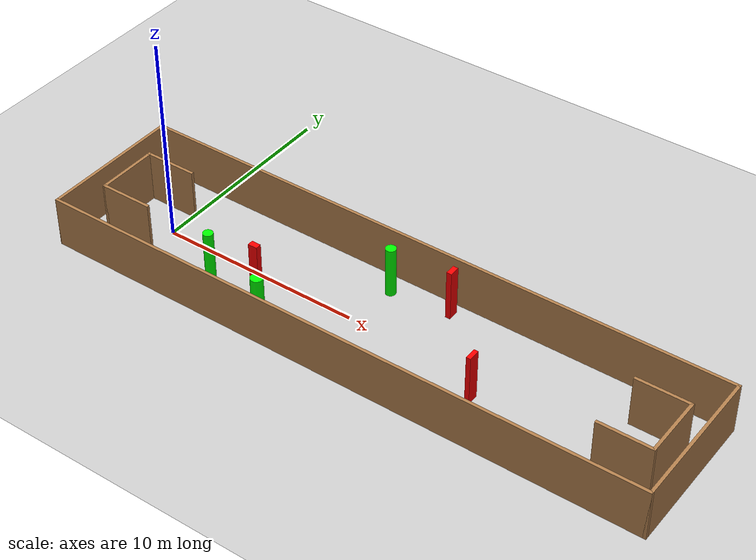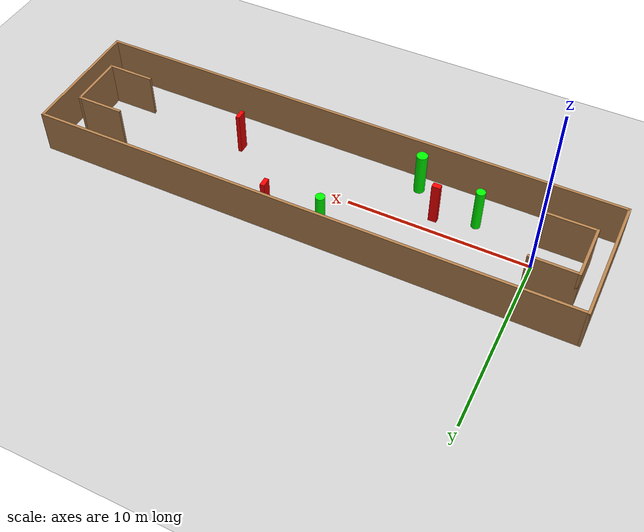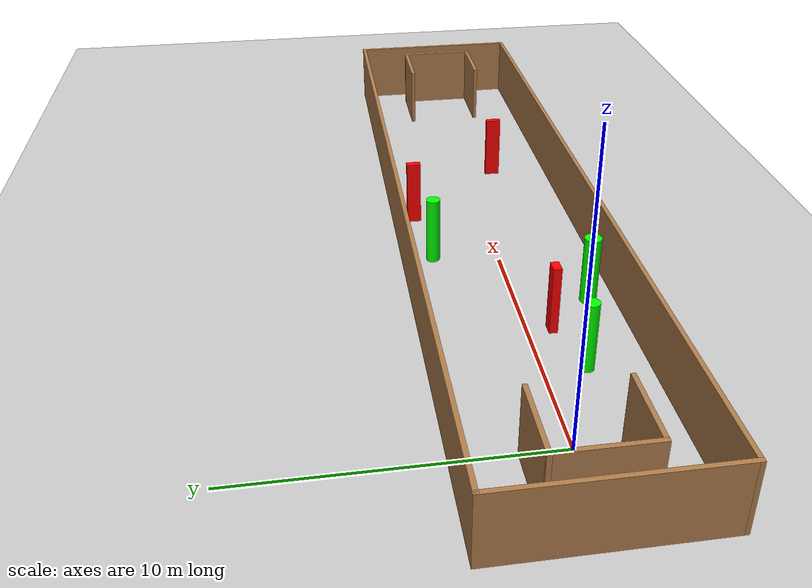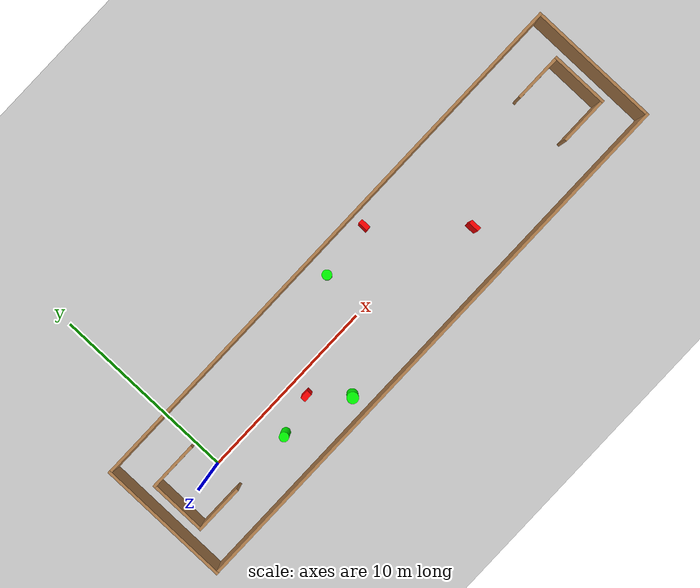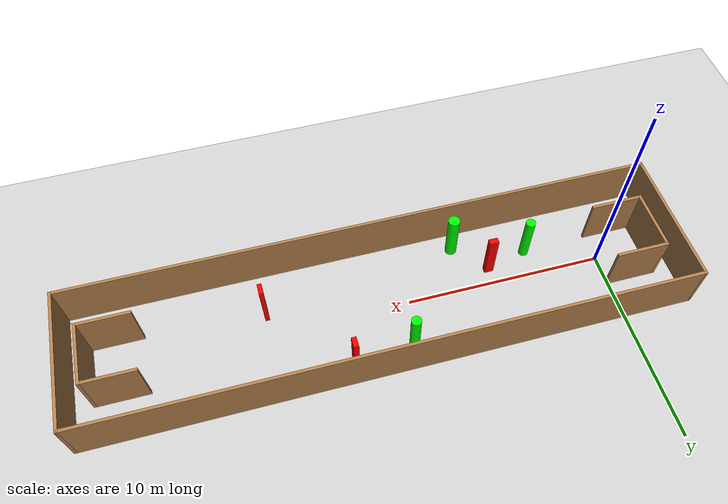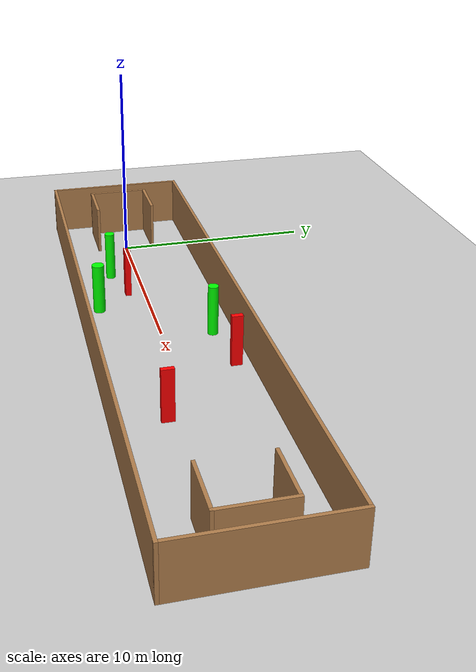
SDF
<sdf version="1.7">
 <world name="default">
  <light name="sun" type="directional">
   <pose>0 0 10 0 -0 0</pose>
   <diffuse>0.8 0.8 0.8 1</diffuse>
   <specular>0.2 0.2 0.2 1</specular>
   <attenuation>
    <range>1000</range>
    <constant>0.9</constant>
    <linear>0.01</linear>
    <quadratic>0.001</quadratic>
   </attenuation>
   <direction>-0.5 0.1 -0.9</direction>
   <spot><inner_angle>0</inner_angle><outer_angle>0</outer_angle><falloff>0</falloff></spot>
  </light>
  <model name="ground_plane">
   <static>1</static>
   <link name="link">
    <collision name="collision">
     <geometry><plane><normal>0 0 1</normal><size>100 100</size></plane></geometry>
     <surface>
      <contact><collide_bitmask>65535</collide_bitmask></contact>
      <friction><ode><mu>100</mu><mu2>50</mu2></ode></friction>
     </surface>
    </collision>
    <visual name="visual">
     <cast_shadows>0</cast_shadows>
     <geometry><plane><normal>0 0 1</normal><size>100 100</size></plane></geometry>
     <material>
      <script><uri>file://media/materials/scripts/gazebo.material</uri><name>Gazebo/Grey</name></script>
     </material>
    </visual>
   </link>
  </model>
  <gravity>0 0 -9.8</gravity>
  <magnetic_field>6e-06 2.3e-05 -4.2e-05</magnetic_field>
  <atmosphere type="adiabatic"/>
  <physics type="ode">
   <max_step_size>0.001</max_step_size>
   <real_time_factor>1</real_time_factor>
   <real_time_update_rate>1000</real_time_update_rate>
  </physics>
  <scene><ambient>0.4 0.4 0.4 1</ambient><background>0.7 0.7 0.7 1</background><shadows>1</shadows></scene>
  <spherical_coordinates>
   <surface_model>EARTH_WGS84</surface_model>
   <latitude_deg>0</latitude_deg>
   <longitude_deg>0</longitude_deg>
   <elevation>0</elevation>
   <heading_deg>0</heading_deg>
  </spherical_coordinates>
  <model name="my_base_walls">
   <link name="Wall_0">
    <collision name="Wall_0_Collision">
     <geometry><box><size>7.15 0.15 2.5</size></box></geometry>
     <pose>0 0 1.25 0 -0 0</pose>
    </collision>
    <visual name="Wall_0_Visual">
     <pose>0 0 1.25 0 -0 0</pose>
     <geometry><box><size>7.15 0.15 2.5</size></box></geometry>
     <material>
      <script><uri>file://media/materials/scripts/gazebo.material</uri><name>Gazebo/Wood</name></script>
      <ambient>1 1 1 1</ambient>
     </material>
     <meta><layer>0</layer></meta>
    </visual>
    <pose>-15 0 0 0 -0 1.5708</pose>
   </link>
   <link name="Wall_10">
    <collision name="Wall_10_Collision">
     <geometry><box><size>2.65 0.15 2.5</size></box></geometry>
     <pose>0 0 1.25 0 -0 0</pose>
    </collision>
    <visual name="Wall_10_Visual">
     <pose>0 0 1.25 0 -0 0</pose>
     <geometry><box><size>2.65 0.15 2.5</size></box></geometry>
     <material>
      <script><uri>file://media/materials/scripts/gazebo.material</uri><name>Gazebo/Wood</name></script>
      <ambient>1 1 1 1</ambient>
     </material>
     <meta><layer>0</layer></meta>
    </visual>
    <pose>-12.75 -1.5 0 0 -0 0</pose>
   </link>
   <link name="Wall_12">
    <collision name="Wall_12_Collision">
     <geometry><box><size>2.65 0.15 2.5</size></box></geometry>
     <pose>0 0 1.25 0 -0 0</pose>
    </collision>
    <visual name="Wall_12_Visual">
     <pose>0 0 1.25 0 -0 0</pose>
     <geometry><box><size>2.65 0.15 2.5</size></box></geometry>
     <material>
      <script><uri>file://media/materials/scripts/gazebo.material</uri><name>Gazebo/Wood</name></script>
      <ambient>1 1 1 1</ambient>
     </material>
     <meta><layer>0</layer></meta>
    </visual>
    <pose>-12.75 1.5 0 0 -0 0</pose>
   </link>
   <link name="Wall_14">
    <collision name="Wall_14_Collision">
     <geometry><box><size>3.15 0.15 2.5</size></box></geometry>
     <pose>0 0 1.25 0 -0 0</pose>
    </collision>
    <visual name="Wall_14_Visual">
     <pose>0 0 1.25 0 -0 0</pose>
     <geometry><box><size>3.15 0.15 2.5</size></box></geometry>
     <material>
      <script><uri>file://media/materials/scripts/gazebo.material</uri><name>Gazebo/Wood</name></script>
      <ambient>1 1 1 1</ambient>
     </material>
     <meta><layer>0</layer></meta>
    </visual>
    <pose>14 0 0 0 -0 -1.5708</pose>
   </link>
   <link name="Wall_15">
    <collision name="Wall_15_Collision">
     <geometry><box><size>2.65 0.15 2.5</size></box></geometry>
     <pose>0 0 1.25 0 -0 0</pose>
    </collision>
    <visual name="Wall_15_Visual">
     <pose>0 0 1.25 0 -0 0</pose>
     <geometry><box><size>2.65 0.15 2.5</size></box></geometry>
     <material>
      <script><uri>file://media/materials/scripts/gazebo.material</uri><name>Gazebo/Wood</name></script>
      <ambient>1 1 1 1</ambient>
     </material>
     <meta><layer>0</layer></meta>
    </visual>
    <pose>12.75 -1.5 0 0 -0 3.14159</pose>
   </link>
   <link name="Wall_17">
    <collision name="Wall_17_Collision">
     <geometry><box><size>2.65 0.15 2.5</size></box></geometry>
     <pose>0 0 1.25 0 -0 0</pose>
    </collision>
    <visual name="Wall_17_Visual">
     <pose>0 0 1.25 0 -0 0</pose>
     <geometry><box><size>2.65 0.15 2.5</size></box></geometry>
     <material>
      <script><uri>file://media/materials/scripts/gazebo.material</uri><name>Gazebo/Wood</name></script>
      <ambient>1 1 1 1</ambient>
     </material>
     <meta><layer>0</layer></meta>
    </visual>
    <pose>12.75 1.5 0 0 -0 3.14159</pose>
   </link>
   <link name="Wall_2">
    <collision name="Wall_2_Collision">
     <geometry><box><size>30.15 0.15 2.5</size></box></geometry>
     <pose>0 0 1.25 0 -0 0</pose>
    </collision>
    <visual name="Wall_2_Visual">
     <pose>0 0 1.25 0 -0 0</pose>
     <geometry><box><size>30.15 0.15 2.5</size></box></geometry>
     <material>
      <script><uri>file://media/materials/scripts/gazebo.material</uri><name>Gazebo/Wood</name></script>
      <ambient>1 1 1 1</ambient>
     </material>
     <meta><layer>0</layer></meta>
    </visual>
    <pose>-0 -3.5 0 0 -0 0</pose>
   </link>
   <link name="Wall_4">
    <collision name="Wall_4_Collision">
     <geometry><box><size>30.15 0.15 2.5</size></box></geometry>
     <pose>0 0 1.25 0 -0 0</pose>
    </collision>
    <visual name="Wall_4_Visual">
     <pose>0 0 1.25 0 -0 0</pose>
     <geometry><box><size>30.15 0.15 2.5</size></box></geometry>
     <material>
      <script><uri>file://media/materials/scripts/gazebo.material</uri><name>Gazebo/Wood</name></script>
      <ambient>1 1 1 1</ambient>
     </material>
     <meta><layer>0</layer></meta>
    </visual>
    <pose>-0 3.5 0 0 -0 0</pose>
   </link>
   <link name="Wall_6">
    <collision name="Wall_6_Collision">
     <geometry><box><size>7.15 0.15 2.5</size></box></geometry>
     <pose>0 0 1.25 0 -0 0</pose>
    </collision>
    <visual name="Wall_6_Visual">
     <pose>0 0 1.25 0 -0 0</pose>
     <geometry><box><size>7.15 0.15 2.5</size></box></geometry>
     <material>
      <script><uri>file://media/materials/scripts/gazebo.material</uri><name>Gazebo/Wood</name></script>
      <ambient>1 1 1 1</ambient>
     </material>
     <meta><layer>0</layer></meta>
    </visual>
    <pose>15 0 0 0 -0 -1.5708</pose>
   </link>
   <link name="Wall_9">
    <collision name="Wall_9_Collision">
     <geometry><box><size>3.15 0.15 2.5</size></box></geometry>
     <pose>0 0 1.25 0 -0 0</pose>
    </collision>
    <visual name="Wall_9_Visual">
     <pose>0 0 1.25 0 -0 0</pose>
     <geometry><box><size>3.15 0.15 2.5</size></box></geometry>
     <material>
      <script><uri>file://media/materials/scripts/gazebo.material</uri><name>Gazebo/Wood</name></script>
      <ambient>1 1 1 1</ambient>
     </material>
     <meta><layer>0</layer></meta>
    </visual>
    <pose>-14 0 0 0 -0 -1.5708</pose>
   </link>
   <static>1</static>
   <pose>11.5 0 0 0 -0 0</pose>
  </model>
  <model name="cylinder1">
   <static>1</static>
   <link name="link">
    <inertial>
     <mass>1</mass>
     <inertia><ixx>0.5</ixx><ixy>0</ixy><ixz>0</ixz><iyy>0.5</iyy><iyz>0</iyz><izz>1</izz></inertia>
    </inertial>
    <collision name="collision">
     <geometry><cylinder><radius>0.2521989021192103</radius><length>2.5</length></cylinder></geometry>
    </collision>
    <visual name="visual">
     <geometry><cylinder><radius>0.2521989021192103</radius><length>2.5</length></cylinder></geometry>
     <material>
      <ambient>0 1 0 1</ambient>
      <diffuse>0 1 0 1</diffuse>
      <specular>0.1 0.1 0.1 1</specular>
      <emissive>0 0 0 0</emissive>
     </material>
    </visual>
   </link>
   <pose>10.463055318303137 2.406524346170949 1.25 0 0 0</pose>
  </model>
  <model name="cylinder2">
   <static>1</static>
   <link name="link">
    <inertial>
     <mass>1</mass>
     <inertia><ixx>0.5</ixx><ixy>0</ixy><ixz>0</ixz><iyy>0.5</iyy><iyz>0</iyz><izz>1</izz></inertia>
    </inertial>
    <collision name="collision">
     <geometry><cylinder><radius>0.29618386704730915</radius><length>2.5</length></cylinder></geometry>
    </collision>
    <visual name="visual">
     <geometry><cylinder><radius>0.29618386704730915</radius><length>2.5</length></cylinder></geometry>
     <material>
      <ambient>0 1 0 1</ambient>
      <diffuse>0 1 0 1</diffuse>
      <specular>0.1 0.1 0.1 1</specular>
      <emissive>0 0 0 0</emissive>
     </material>
    </visual>
   </link>
   <pose>7.032910508157322 -2.511378889393616 1.25 0 0 0</pose>
  </model>
  <model name="cylinder3">
   <static>1</static>
   <link name="link">
    <inertial>
     <mass>1</mass>
     <inertia><ixx>0.5</ixx><ixy>0</ixy><ixz>0</ixz><iyy>0.5</iyy><iyz>0</iyz><izz>1</izz></inertia>
    </inertial>
    <collision name="collision">
     <geometry><cylinder><radius>0.24517962627806744</radius><length>2.5</length></cylinder></geometry>
    </collision>
    <visual name="visual">
     <geometry><cylinder><radius>0.24517962627806744</radius><length>2.5</length></cylinder></geometry>
     <material>
      <ambient>0 1 0 1</ambient>
      <diffuse>0 1 0 1</diffuse>
      <specular>0.1 0.1 0.1 1</specular>
      <emissive>0 0 0 0</emissive>
     </material>
    </visual>
   </link>
   <pose>3.42522714130836 -1.3981034599728712 1.25 0 0 0</pose>
  </model>
  <model name="box1">
   <static>1</static>
   <link name="link">
    <inertial>
     <mass>1</mass>
     <inertia><ixx>0.083</ixx><ixy>0</ixy><ixz>0</ixz><iyy>0.083</iyy><iyz>0</iyz><izz>0.083</izz></inertia>
    </inertial>
    <collision name="collision">
     <geometry><box><size>0.4582370366867983 0.29220708644184384 2.5</size></box></geometry>
    </collision>
    <visual name="visual">
     <geometry><box><size>0.4582370366867983 0.29220708644184384 2.5</size></box></geometry>
     <material>
      <ambient>1 0 0 1</ambient>
      <diffuse>1 0 0 1</diffuse>
      <specular>0.1 0.1 0.1 1</specular>
      <emissive>0 0 0 0</emissive>
     </material>
    </visual>
    <sensor name="my_contact" type="contact">
     <contact><collision>box_collision</collision><topic>__default_topic__</topic></contact>
    </sensor>
   </link>
   <pose>5.561393918123196 -0.8387464637803679 1.25 0 0 0</pose>
  </model>
  <model name="box2">
   <static>1</static>
   <link name="link">
    <inertial>
     <mass>1</mass>
     <inertia><ixx>0.083</ixx><ixy>0</ixy><ixz>0</ixz><iyy>0.083</iyy><iyz>0</iyz><izz>0.083</izz></inertia>
    </inertial>
    <collision name="collision">
     <geometry><box><size>0.21563508959961833 0.5760246276177481 2.5</size></box></geometry>
    </collision>
    <visual name="visual">
     <geometry><box><size>0.21563508959961833 0.5760246276177481 2.5</size></box></geometry>
     <material>
      <ambient>1 0 0 1</ambient>
      <diffuse>1 0 0 1</diffuse>
      <specular>0.1 0.1 0.1 1</specular>
      <emissive>0 0 0 0</emissive>
     </material>
    </visual>
    <sensor name="my_contact" type="contact">
     <contact><collision>box_collision</collision><topic>__default_topic__</topic></contact>
    </sensor>
   </link>
   <pose>17.01382231951979 -1.1431549041232194 1.25 0 0 0</pose>
  </model>
  <model name="box3">
   <static>1</static>
   <link name="link">
    <inertial>
     <mass>1</mass>
     <inertia><ixx>0.083</ixx><ixy>0</ixy><ixz>0</ixz><iyy>0.083</iyy><iyz>0</iyz><izz>0.083</izz></inertia>
    </inertial>
    <collision name="collision">
     <geometry><box><size>0.25055718560207113 0.5218606102691354 2.5</size></box></geometry>
    </collision>
    <visual name="visual">
     <geometry><box><size>0.25055718560207113 0.5218606102691354 2.5</size></box></geometry>
     <material>
      <ambient>1 0 0 1</ambient>
      <diffuse>1 0 0 1</diffuse>
      <specular>0.1 0.1 0.1 1</specular>
      <emissive>0 0 0 0</emissive>
     </material>
    </visual>
    <sensor name="my_contact" type="contact">
     <contact><collision>box_collision</collision><topic>__default_topic__</topic></contact>
    </sensor>
   </link>
   <pose>13.425903545452293 2.7336315396611237 1.25 0 0 0</pose>
  </model>
 </world>
</sdf>
